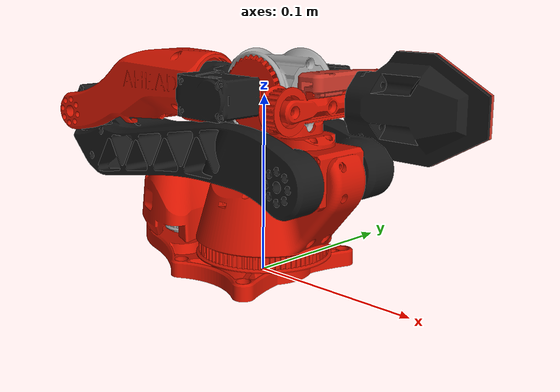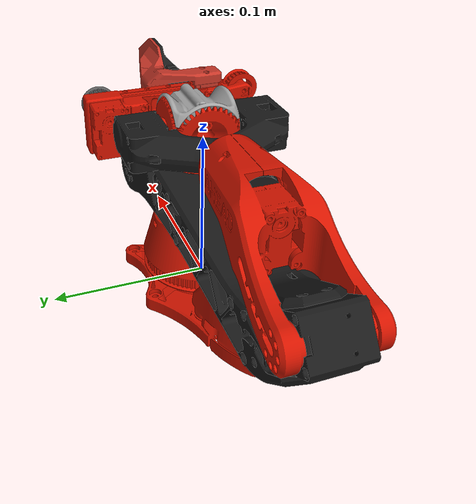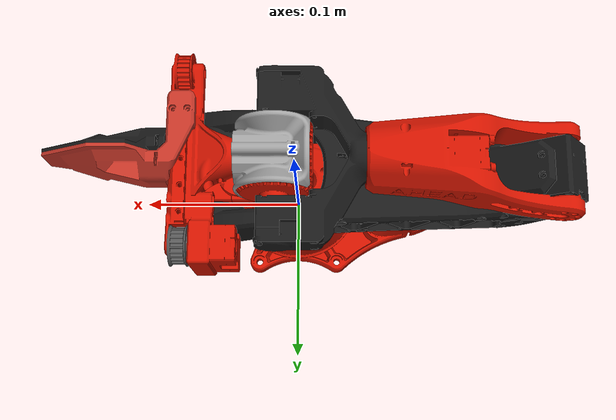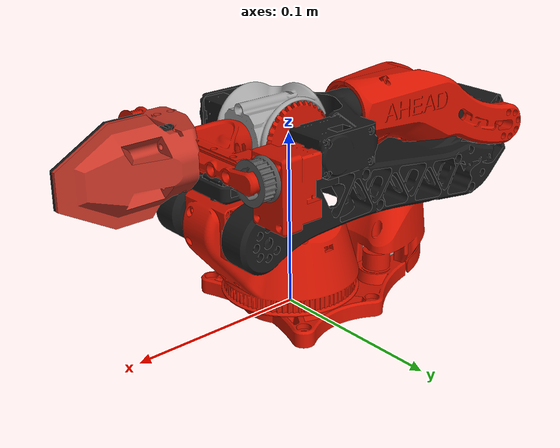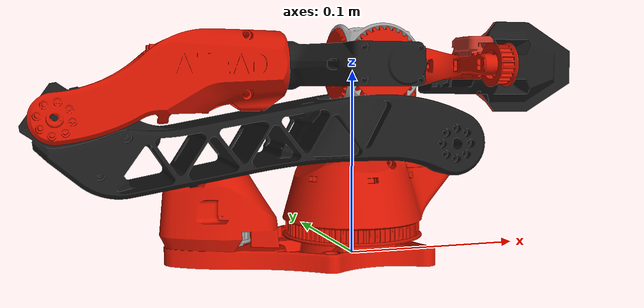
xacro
<?xml version="1.0" ?>
<robot name="arm" xmlns:xacro="http://www.ros.org/wiki/xacro">

<xacro:include filename="$(find arm_description)/urdf/materials.xacro" />
<xacro:include filename="$(find arm_description)/urdf/arm.trans" />
<link name="base_link">
  <inertial>
    <origin xyz="-0.035332029911054406 -0.0001151713095156251 0.01677047618232762" rpy="0 0 0"/>
    <mass value="1.0722770152321714"/>
    <inertia ixx="0.000458" iyy="0.001782" izz="0.001902" ixy="-4e-06" iyz="-2e-06" ixz="0.000177"/>
  </inertial>
  <visual>
    <origin xyz="0 0 0" rpy="0 0 0"/>
    <geometry>
      <mesh filename="/home/ritwik/vallab_ws/src/arm_description/meshes/STL/CAD/base_link.stl" scale="0.001 0.001 0.001"/>
    </geometry>
    <material name="opaque210200"/>
  </visual>
  <collision>
    <origin xyz="0 0 0" rpy="0 0 0"/>
    <geometry>
      <mesh filename="/home/ritwik/vallab_ws/src/arm_description/meshes/STL/CAD/base_link.stl" scale="0.001 0.001 0.001"/>
    </geometry>
  </collision>
</link>

<link name="link11">
  <inertial>
    <origin xyz="6.245004513516506e-16 4.29525355211143e-07 0.008489399860949962" rpy="0 0 0"/>
    <mass value="0.03750981375662675"/>
    <inertia ixx="2e-06" iyy="2e-06" izz="2e-06" ixy="-0.0" iyz="-0.0" ixz="0.0"/>
  </inertial>
  <visual>
    <origin xyz="0.069 -0.0 -0.006" rpy="0 0 0"/>
    <geometry>
      <mesh filename="/home/ritwik/vallab_ws/src/arm_description/meshes/STL/CAD/link11.stl" scale="0.001 0.001 0.001"/>
    </geometry>
    <material name="opaque160160160"/>
  </visual>
  <collision>
    <origin xyz="0.069 -0.0 -0.006" rpy="0 0 0"/>
    <geometry>
      <mesh filename="/home/ritwik/vallab_ws/src/arm_description/meshes/STL/CAD/link11.stl" scale="0.001 0.001 0.001"/>
    </geometry>
  </collision>
</link>

<link name="link1">
  <inertial>
    <origin xyz="0.011206111393191323 -0.00011244258381883525 0.0356863108174146" rpy="0 0 0"/>
    <mass value="1.2482750398529938"/>
    <inertia ixx="0.000783" iyy="0.001096" izz="0.000998" ixy="3e-06" iyz="3e-06" ixz="-0.000187"/>
  </inertial>
  <visual>
    <origin xyz="0.0 0.0 -0.0105" rpy="0 0 0"/>
    <geometry>
      <mesh filename="/home/ritwik/vallab_ws/src/arm_description/meshes/STL/CAD/link1.stl" scale="0.001 0.001 0.001"/>
    </geometry>
    <material name="opaque210200"/>
  </visual>
  <collision>
    <origin xyz="0.0 0.0 -0.0105" rpy="0 0 0"/>
    <geometry>
      <mesh filename="/home/ritwik/vallab_ws/src/arm_description/meshes/STL/CAD/link1.stl" scale="0.001 0.001 0.001"/>
    </geometry>
  </collision>
</link>

<link name="link2">
  <inertial>
    <origin xyz="-0.10533457699711699 0.01592298495871186 0.0025359722344356073" rpy="0 0 0"/>
    <mass value="1.5172780004261823"/>
    <inertia ixx="0.000757" iyy="0.00883" izz="0.009159" ixy="6.7e-05" iyz="2e-06" ixz="-4e-05"/>
  </inertial>
  <visual>
    <origin xyz="-0.045 0.017 -0.062" rpy="0 0 0"/>
    <geometry>
      <mesh filename="/home/ritwik/vallab_ws/src/arm_description/meshes/STL/CAD/link2.stl" scale="0.001 0.001 0.001"/>
    </geometry>
    <material name="opaque252525"/>
  </visual>
  <collision>
    <origin xyz="-0.045 0.017 -0.062" rpy="0 0 0"/>
    <geometry>
      <mesh filename="/home/ritwik/vallab_ws/src/arm_description/meshes/STL/CAD/link2.stl" scale="0.001 0.001 0.001"/>
    </geometry>
  </collision>
</link>

<link name="link3">
  <inertial>
    <origin xyz="0.05688940039684258 0.016684826028364724 0.017232609352887562" rpy="0 0 0"/>
    <mass value="0.6382129609796608"/>
    <inertia ixx="0.000266" iyy="0.000647" izz="0.000695" ixy="-6e-06" iyz="-2e-06" ixz="-0.000136"/>
  </inertial>
  <visual>
    <origin xyz="0.155 0.017 -0.077" rpy="0 0 0"/>
    <geometry>
      <mesh filename="/home/ritwik/vallab_ws/src/arm_description/meshes/STL/CAD/link3.stl" scale="0.001 0.001 0.001"/>
    </geometry>
    <material name="opaque210200"/>
  </visual>
  <collision>
    <origin xyz="0.155 0.017 -0.077" rpy="0 0 0"/>
    <geometry>
      <mesh filename="/home/ritwik/vallab_ws/src/arm_description/meshes/STL/CAD/link3.stl" scale="0.001 0.001 0.001"/>
    </geometry>
  </collision>
</link>

<link name="link4">
  <inertial>
    <origin xyz="0.02539855845508478 -2.4088588287602283e-07 2.4485807587071307e-07" rpy="0 0 0"/>
    <mass value="0.556203439123278"/>
    <inertia ixx="0.000498" iyy="0.000461" izz="0.00092" ixy="-0.0" iyz="0.0" ixz="-0.0"/>
  </inertial>
  <visual>
    <origin xyz="0.0461 0.0 -0.103" rpy="0 0 0"/>
    <geometry>
      <mesh filename="/home/ritwik/vallab_ws/src/arm_description/meshes/STL/CAD/link4.stl" scale="0.001 0.001 0.001"/>
    </geometry>
    <material name="opaque252525"/>
  </visual>
  <collision>
    <origin xyz="0.0461 0.0 -0.103" rpy="0 0 0"/>
    <geometry>
      <mesh filename="/home/ritwik/vallab_ws/src/arm_description/meshes/STL/CAD/link4.stl" scale="0.001 0.001 0.001"/>
    </geometry>
  </collision>
</link>

<link name="link5">
  <inertial>
    <origin xyz="2.753202211509126e-07 0.005524662132598862 -1.7395752630045003e-08" rpy="0 0 0"/>
    <mass value="0.048347571885136914"/>
    <inertia ixx="4e-06" iyy="8e-06" izz="4e-06" ixy="0.0" iyz="0.0" ixz="-0.0"/>
  </inertial>
  <visual>
    <origin xyz="-0.0108 0.024 -0.103" rpy="0 0 0"/>
    <geometry>
      <mesh filename="/home/ritwik/vallab_ws/src/arm_description/meshes/STL/CAD/link5.stl" scale="0.001 0.001 0.001"/>
    </geometry>
    <material name="opaque210200"/>
  </visual>
  <collision>
    <origin xyz="-0.0108 0.024 -0.103" rpy="0 0 0"/>
    <geometry>
      <mesh filename="/home/ritwik/vallab_ws/src/arm_description/meshes/STL/CAD/link5.stl" scale="0.001 0.001 0.001"/>
    </geometry>
  </collision>
</link>

<link name="link6">
  <inertial>
    <origin xyz="2.7532022249358856e-07 -0.0055246621326002915 -1.7395751616966493e-08" rpy="0 0 0"/>
    <mass value="0.04834757188513691"/>
    <inertia ixx="4e-06" iyy="8e-06" izz="4e-06" ixy="-0.0" iyz="-0.0" ixz="-0.0"/>
  </inertial>
  <visual>
    <origin xyz="-0.0108 -0.024 -0.103" rpy="0 0 0"/>
    <geometry>
      <mesh filename="/home/ritwik/vallab_ws/src/arm_description/meshes/STL/CAD/link6.stl" scale="0.001 0.001 0.001"/>
    </geometry>
    <material name="opaque210200"/>
  </visual>
  <collision>
    <origin xyz="-0.0108 -0.024 -0.103" rpy="0 0 0"/>
    <geometry>
      <mesh filename="/home/ritwik/vallab_ws/src/arm_description/meshes/STL/CAD/link6.stl" scale="0.001 0.001 0.001"/>
    </geometry>
  </collision>
</link>

<link name="link7">
  <inertial>
    <origin xyz="0.0028448480020698153 -0.02399986356623937 -2.0958257078984577e-06" rpy="0 0 0"/>
    <mass value="0.15678652750508332"/>
    <inertia ixx="3.8e-05" iyy="3.9e-05" izz="3.5e-05" ixy="-0.0" iyz="0.0" ixz="-0.0"/>
  </inertial>
  <visual>
    <origin xyz="-0.0108 -0.024 -0.103" rpy="0 0 0"/>
    <geometry>
      <mesh filename="/home/ritwik/vallab_ws/src/arm_description/meshes/STL/CAD/link7.stl" scale="0.001 0.001 0.001"/>
    </geometry>
    <material name="opaque160160160"/>
  </visual>
  <collision>
    <origin xyz="-0.0108 -0.024 -0.103" rpy="0 0 0"/>
    <geometry>
      <mesh filename="/home/ritwik/vallab_ws/src/arm_description/meshes/STL/CAD/link7.stl" scale="0.001 0.001 0.001"/>
    </geometry>
  </collision>
</link>

<link name="link8">
  <inertial>
    <origin xyz="0.006337791282976783 0.014437861844293989 -0.002533555574269944" rpy="0 0 0"/>
    <mass value="0.41604327739339353"/>
    <inertia ixx="0.000417" iyy="0.000227" izz="0.000586" ixy="-1.7e-05" iyz="3.7e-05" ixz="6e-06"/>
  </inertial>
  <visual>
    <origin xyz="-0.0328 0.0 -0.103" rpy="0 0 0"/>
    <geometry>
      <mesh filename="/home/ritwik/vallab_ws/src/arm_description/meshes/STL/CAD/link8.stl" scale="0.001 0.001 0.001"/>
    </geometry>
    <material name="opaque210200"/>
  </visual>
  <collision>
    <origin xyz="-0.0328 0.0 -0.103" rpy="0 0 0"/>
    <geometry>
      <mesh filename="/home/ritwik/vallab_ws/src/arm_description/meshes/STL/CAD/link8.stl" scale="0.001 0.001 0.001"/>
    </geometry>
  </collision>
</link>

<link name="link12">
  <inertial>
    <origin xyz="-0.0070040483790297925 -8.487575241938883e-08 -8.071878474513738e-07" rpy="0 0 0"/>
    <mass value="0.019850481866978086"/>
    <inertia ixx="1e-06" iyy="1e-06" izz="1e-06" ixy="-0.0" iyz="0.0" ixz="-0.0"/>
  </inertial>
  <visual>
    <origin xyz="-0.0664 -0.05 -0.103" rpy="0 0 0"/>
    <geometry>
      <mesh filename="/home/ritwik/vallab_ws/src/arm_description/meshes/STL/CAD/link12.stl" scale="0.001 0.001 0.001"/>
    </geometry>
    <material name="opaque898989"/>
  </visual>
  <collision>
    <origin xyz="-0.0664 -0.05 -0.103" rpy="0 0 0"/>
    <geometry>
      <mesh filename="/home/ritwik/vallab_ws/src/arm_description/meshes/STL/CAD/link12.stl" scale="0.001 0.001 0.001"/>
    </geometry>
  </collision>
</link>

<link name="link10">
  <inertial>
    <origin xyz="0.02573313617415028 -0.03390025109466069 0.0052187897794312155" rpy="0 0 0"/>
    <mass value="0.1633987484930479"/>
    <inertia ixx="3.2e-05" iyy="7.7e-05" izz="7.6e-05" ixy="1.2e-05" iyz="5e-06" ixz="-8e-06"/>
  </inertial>
  <visual>
    <origin xyz="-0.0641 -0.0325 -0.0959" rpy="0 0 0"/>
    <geometry>
      <mesh filename="/home/ritwik/vallab_ws/src/arm_description/meshes/STL/CAD/link10.stl" scale="0.001 0.001 0.001"/>
    </geometry>
    <material name="opaque252525"/>
  </visual>
  <collision>
    <origin xyz="-0.0641 -0.0325 -0.0959" rpy="0 0 0"/>
    <geometry>
      <mesh filename="/home/ritwik/vallab_ws/src/arm_description/meshes/STL/CAD/link10.stl" scale="0.001 0.001 0.001"/>
    </geometry>
  </collision>
</link>

<link name="link9">
  <inertial>
    <origin xyz="0.0257331361554268 0.033900251075823624 -0.005218789736564436" rpy="0 0 0"/>
    <mass value="0.16339874859628656"/>
    <inertia ixx="3.2e-05" iyy="7.7e-05" izz="7.6e-05" ixy="-1.2e-05" iyz="5e-06" ixz="8e-06"/>
  </inertial>
  <visual>
    <origin xyz="-0.0641 0.0325 -0.1101" rpy="0 0 0"/>
    <geometry>
      <mesh filename="/home/ritwik/vallab_ws/src/arm_description/meshes/STL/CAD/link9.stl" scale="0.001 0.001 0.001"/>
    </geometry>
    <material name="opaque1965339"/>
  </visual>
  <collision>
    <origin xyz="-0.0641 0.0325 -0.1101" rpy="0 0 0"/>
    <geometry>
      <mesh filename="/home/ritwik/vallab_ws/src/arm_description/meshes/STL/CAD/link9.stl" scale="0.001 0.001 0.001"/>
    </geometry>
  </collision>
</link>

<joint name="base_link-link11" type="continuous">
  <origin xyz="-0.069 0.0 0.006" rpy="0 0 0"/>
  <parent link="base_link"/>
  <child link="link11"/>
  <axis xyz="0.0 0.0 1.0"/>
</joint>

<joint name="base_link-link1" type="revolute">
  <origin xyz="0.0 0.0 0.0105" rpy="0 0 0"/>
  <parent link="base_link"/>
  <child link="link1"/>
  <axis xyz="0.0 0.0 1.0"/>
  <limit upper="3.141593" lower="-3.141593" effort="100" velocity="100"/>
</joint>

<joint name="link1-link2" type="revolute">
  <origin xyz="0.045 -0.017 0.0515" rpy="0 0 0"/>
  <parent link="link1"/>
  <child link="link2"/>
  <axis xyz="0.0 1.0 0.0"/>
  <limit upper="4.101524" lower="0.0" effort="100" velocity="100"/>
</joint>

<joint name="link2-link3" type="revolute">
  <origin xyz="-0.2 0.0 0.015" rpy="0 0 0"/>
  <parent link="link2"/>
  <child link="link3"/>
  <axis xyz="0.0 1.0 0.0"/>
  <limit upper="0.0" lower="-2.792527" effort="100" velocity="100"/>
</joint>

<joint name="link3-link4" type="revolute">
  <origin xyz="0.1089 0.017 0.026" rpy="0 0 0"/>
  <parent link="link3"/>
  <child link="link4"/>
  <axis xyz="1.0 0.0 0.0"/>
  <limit upper="3.141593" lower="-3.141593" effort="100" velocity="100"/>
</joint>

<joint name="link4-link5" type="continuous">
  <origin xyz="0.0569 -0.024 0.0" rpy="0 0 0"/>
  <parent link="link4"/>
  <child link="link5"/>
  <axis xyz="0.0 1.0 0.0"/>
</joint>

<joint name="link4-link6" type="continuous">
  <origin xyz="0.0569 0.024 0.0" rpy="0 0 0"/>
  <parent link="link4"/>
  <child link="link6"/>
  <axis xyz="0.0 1.0 0.0"/>
</joint>

<joint name="link4-link7" type="revolute">
  <origin xyz="0.0569 0.024 0.0" rpy="0 0 0"/>
  <parent link="link4"/>
  <child link="link7"/>
  <axis xyz="0.0 1.0 0.0"/>
  <limit upper="1.745329" lower="-1.745329" effort="100" velocity="100"/>
</joint>

<joint name="link7-link8" type="revolute">
  <origin xyz="0.022 -0.024 0.0" rpy="0 0 0"/>
  <parent link="link7"/>
  <child link="link8"/>
  <axis xyz="1.0 0.0 0.0"/>
  <limit upper="3.141593" lower="-3.141593" effort="100" velocity="100"/>
</joint>

<joint name="link8-link12" type="continuous">
  <origin xyz="0.0336 0.05 0.0" rpy="0 0 0"/>
  <parent link="link8"/>
  <child link="link12"/>
  <axis xyz="1.0 0.0 0.0"/>
</joint>

<joint name="link8-link10" type="prismatic">
  <origin xyz="0.0313 0.0325 -0.0071" rpy="0 0 0"/>
  <parent link="link8"/>
  <child link="link10"/>
  <axis xyz="0.0 1.0 0.0"/>
  <limit upper="0.0" lower="-0.051" effort="100" velocity="100"/>
</joint>

<joint name="link8-link9" type="prismatic">
  <origin xyz="0.0313 -0.0325 0.0071" rpy="0 0 0"/>
  <parent link="link8"/>
  <child link="link9"/>
  <axis xyz="0.0 1.0 0.0"/>
  <limit upper="0.051" lower="0.0" effort="100" velocity="100"/>
</joint>

</robot>

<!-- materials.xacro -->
<robot name="arm" xmlns:xacro="http://www.ros.org/wiki/xacro" >

<material name="silver_default">
  <color rgba="0.700 0.700 0.700 1.000"/>
</material>
<material name="opaque210200">
  <color rgba="0.8235294117647058 0.0784313725490196 0.0 1.0"/>
</material>
<material name="opaque252525">
  <color rgba="0.09803921568627451 0.09803921568627451 0.09803921568627451 1.0"/>
</material>
<material name="opaque160160160">
  <color rgba="0.6274509803921569 0.6274509803921569 0.6274509803921569 1.0"/>
</material>
<material name="opaque1965339">
  <color rgba="0.7686274509803922 0.20784313725490197 0.15294117647058825 1.0"/>
</material>
<material name="opaque898989">
  <color rgba="0.34901960784313724 0.34901960784313724 0.34901960784313724 1.0"/>
</material>

</robot>
